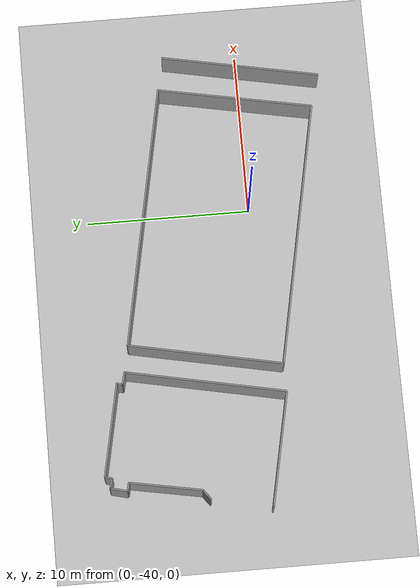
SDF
<sdf version="1.6">
 <world name="default">
  <model name="ground_plane">
   <static>1</static>
   <link name="link">
    <collision name="collision">
     <geometry><plane><normal>0 0 1</normal><size>100 100</size></plane></geometry>
     <surface><friction><ode><mu>100</mu><mu2>50</mu2></ode></friction></surface>
    </collision>
    <visual name="visual">
     <cast_shadows>0</cast_shadows>
     <geometry><plane><normal>0 0 1</normal><size>100 100</size></plane></geometry>
     <material>
      <script><uri>file://media/materials/scripts/gazebo.material</uri><name>Gazebo/Grey</name></script>
     </material>
    </visual>
   </link>
  </model>
  <model name="50023964">
   <static>1</static>
   <link name="Wall_143">
    <collision name="Wall_143_Collision">
     <geometry><box><size>9.76209954019 0.1 2.5</size></box></geometry>
     <pose>4.88104977009 0 1.25 0 0 0</pose>
    </collision>
    <visual name="Wall_143_Visual">
     <pose>4.88104977009 0 1.25 0 0 0</pose>
     <geometry><box><size>9.76209954019 0.1 2.5</size></box></geometry>
     <material>
      <script><uri>file://media/materials/scripts/gazebo.material</uri><name>Gazebo/Grey</name></script>
      <ambient>1 1 1 1</ambient>
     </material>
    </visual>
    <pose>90.0163221238 -119.499031469 0 0 0 1.37727948588</pose>
   </link>
   <link name="Wall_148">
    <collision name="Wall_148_Collision">
     <geometry><box><size>9.46305015491 0.1 2.5</size></box></geometry>
     <pose>4.73152507745 0 1.25 0 0 0</pose>
    </collision>
    <visual name="Wall_148_Visual">
     <pose>4.73152507745 0 1.25 0 0 0</pose>
     <geometry><box><size>9.46305015491 0.1 2.5</size></box></geometry>
     <material>
      <script><uri>file://media/materials/scripts/gazebo.material</uri><name>Gazebo/Grey</name></script>
      <ambient>1 1 1 1</ambient>
     </material>
    </visual>
    <pose>72.0276904512 -115.698580547 0 0 0 1.37261630473</pose>
   </link>
   <link name="Wall_149">
    <collision name="Wall_149_Collision">
     <geometry><box><size>16.2220365014 0.1 2.5</size></box></geometry>
     <pose>8.1110182507 0 1.25 0 0 0</pose>
    </collision>
    <visual name="Wall_149_Visual">
     <pose>8.1110182507 0 1.25 0 0 0</pose>
     <geometry><box><size>16.2220365014 0.1 2.5</size></box></geometry>
     <material>
      <script><uri>file://media/materials/scripts/gazebo.material</uri><name>Gazebo/Grey</name></script>
      <ambient>1 1 1 1</ambient>
     </material>
    </visual>
    <pose>73.8908259503 -106.420755136 0 0 0 -0.191805903141</pose>
   </link>
   <link name="Wall_150">
    <collision name="Wall_150_Collision">
     <geometry><box><size>9.54280666722 0.1 2.5</size></box></geometry>
     <pose>4.77140333361 0 1.25 0 0 0</pose>
    </collision>
    <visual name="Wall_150_Visual">
     <pose>4.77140333361 0 1.25 0 0 0</pose>
     <geometry><box><size>9.54280666722 0.1 2.5</size></box></geometry>
     <material>
      <script><uri>file://media/materials/scripts/gazebo.material</uri><name>Gazebo/Grey</name></script>
      <ambient>1 1 1 1</ambient>
     </material>
    </visual>
    <pose>89.8153758217 -109.513194246 0 0 0 -1.75910749273</pose>
   </link>
   <link name="Wall_151">
    <collision name="Wall_151_Collision">
     <geometry><box><size>16.3158998259 0.1 2.5</size></box></geometry>
     <pose>8.15794991294 0 1.25 0 0 0</pose>
    </collision>
    <visual name="Wall_151_Visual">
     <pose>8.15794991294 0 1.25 0 0 0</pose>
     <geometry><box><size>16.3158998259 0.1 2.5</size></box></geometry>
     <material>
      <script><uri>file://media/materials/scripts/gazebo.material</uri><name>Gazebo/Grey</name></script>
      <ambient>1 1 1 1</ambient>
     </material>
    </visual>
    <pose>88.0289606554 -118.887301134 0 0 0 2.94489025091</pose>
   </link>
   <link name="Wall_153">
    <collision name="Wall_153_Collision">
     <geometry><box><size>0.742421209534 0.1 2.5</size></box></geometry>
     <pose>0.371210604767 0 1.25 0 0 0</pose>
    </collision>
    <visual name="Wall_153_Visual">
     <pose>0.371210604767 0 1.25 0 0 0</pose>
     <geometry><box><size>0.742421209534 0.1 2.5</size></box></geometry>
     <material>
      <script><uri>file://media/materials/scripts/gazebo.material</uri><name>Gazebo/Grey</name></script>
      <ambient>1 1 1 1</ambient>
     </material>
    </visual>
    <pose>64.1778285859 -110.651551237 0 0 0 0.63775247242</pose>
   </link>
   <link name="Wall_154">
    <collision name="Wall_154_Collision">
     <geometry><box><size>4.4237679642 0.1 2.5</size></box></geometry>
     <pose>2.2118839821 0 1.25 0 0 0</pose>
    </collision>
    <visual name="Wall_154_Visual">
     <pose>2.2118839821 0 1.25 0 0 0</pose>
     <geometry><box><size>4.4237679642 0.1 2.5</size></box></geometry>
     <material>
      <script><uri>file://media/materials/scripts/gazebo.material</uri><name>Gazebo/Grey</name></script>
      <ambient>1 1 1 1</ambient>
     </material>
    </visual>
    <pose>64.7743164714 -110.20952018 0 0 0 1.39006964422</pose>
   </link>
   <link name="Wall_155">
    <collision name="Wall_155_Collision">
     <geometry><box><size>0.498386039366 0.1 2.5</size></box></geometry>
     <pose>0.249193019683 0 1.25 0 0 0</pose>
    </collision>
    <visual name="Wall_155_Visual">
     <pose>0.249193019683 0 1.25 0 0 0</pose>
     <geometry><box><size>0.498386039366 0.1 2.5</size></box></geometry>
     <material>
      <script><uri>file://media/materials/scripts/gazebo.material</uri><name>Gazebo/Grey</name></script>
      <ambient>1 1 1 1</ambient>
     </material>
    </visual>
    <pose>65.5694642914 -105.857800641 0 0 0 2.91800308618</pose>
   </link>
   <link name="Wall_156">
    <collision name="Wall_156_Collision">
     <geometry><box><size>1.0448415504 0.1 2.5</size></box></geometry>
     <pose>0.522420775202 0 1.25 0 0 0</pose>
    </collision>
    <visual name="Wall_156_Visual">
     <pose>0.522420775202 0 1.25 0 0 0</pose>
     <geometry><box><size>1.0448415504 0.1 2.5</size></box></geometry>
     <material>
      <script><uri>file://media/materials/scripts/gazebo.material</uri><name>Gazebo/Grey</name></script>
      <ambient>1 1 1 1</ambient>
     </material>
    </visual>
    <pose>65.0834841701 -105.747292877 0 0 0 1.33596061947</pose>
   </link>
   <link name="Wall_157">
    <collision name="Wall_157_Collision">
     <geometry><box><size>0.594857220101 0.1 2.5</size></box></geometry>
     <pose>0.297428610051 0 1.25 0 0 0</pose>
    </collision>
    <visual name="Wall_157_Visual">
     <pose>0.297428610051 0 1.25 0 0 0</pose>
     <geometry><box><size>0.594857220101 0.1 2.5</size></box></geometry>
     <material>
      <script><uri>file://media/materials/scripts/gazebo.material</uri><name>Gazebo/Grey</name></script>
      <ambient>1 1 1 1</ambient>
     </material>
    </visual>
    <pose>65.3266012512 -104.731129529 0 0 0 -0.263105756439</pose>
   </link>
   <link name="Wall_158">
    <collision name="Wall_158_Collision">
     <geometry><box><size>0.440051602902 0.1 2.5</size></box></geometry>
     <pose>0.220025801451 0 1.25 0 0 0</pose>
    </collision>
    <visual name="Wall_158_Visual">
     <pose>0.220025801451 0 1.25 0 0 0</pose>
     <geometry><box><size>0.440051602902 0.1 2.5</size></box></geometry>
     <material>
      <script><uri>file://media/materials/scripts/gazebo.material</uri><name>Gazebo/Grey</name></script>
      <ambient>1 1 1 1</ambient>
     </material>
    </visual>
    <pose>65.9009875838 -104.885840399 0 0 0 1.26529411412</pose>
   </link>
   <link name="Wall_159">
    <collision name="Wall_159_Collision">
     <geometry><box><size>5.70133083528 0.1 2.5</size></box></geometry>
     <pose>2.85066541764 0 1.25 0 0 0</pose>
    </collision>
    <visual name="Wall_159_Visual">
     <pose>2.85066541764 0 1.25 0 0 0</pose>
     <geometry><box><size>5.70133083528 0.1 2.5</size></box></geometry>
     <material>
      <script><uri>file://media/materials/scripts/gazebo.material</uri><name>Gazebo/Grey</name></script>
      <ambient>1 1 1 1</ambient>
     </material>
    </visual>
    <pose>66.0333428599 -104.466164936 0 0 0 -0.198924811072</pose>
   </link>
   <link name="Wall_160">
    <collision name="Wall_160_Collision">
     <geometry><box><size>0.342797494401 0.1 2.5</size></box></geometry>
     <pose>0.171398747201 0 1.25 0 0 0</pose>
    </collision>
    <visual name="Wall_160_Visual">
     <pose>0.171398747201 0 1.25 0 0 0</pose>
     <geometry><box><size>0.342797494401 0.1 2.5</size></box></geometry>
     <material>
      <script><uri>file://media/materials/scripts/gazebo.material</uri><name>Gazebo/Grey</name></script>
      <ambient>1 1 1 1</ambient>
     </material>
    </visual>
    <pose>71.6222412753 -105.592836048 0 0 0 -1.83087360879</pose>
   </link>
   <link name="Wall_161">
    <collision name="Wall_161_Collision">
     <geometry><box><size>0.749983324418 0.1 2.5</size></box></geometry>
     <pose>0.374991662209 0 1.25 0 0 0</pose>
    </collision>
    <visual name="Wall_161_Visual">
     <pose>0.374991662209 0 1.25 0 0 0</pose>
     <geometry><box><size>0.749983324418 0.1 2.5</size></box></geometry>
     <material>
      <script><uri>file://media/materials/scripts/gazebo.material</uri><name>Gazebo/Grey</name></script>
      <ambient>1 1 1 1</ambient>
     </material>
    </visual>
    <pose>71.5340891048 -105.9241053 0 0 0 -0.237995536414</pose>
   </link>
   <link name="Wall_162">
    <collision name="Wall_162_Collision">
     <geometry><box><size>9.82566338114 0.1 2.5</size></box></geometry>
     <pose>4.91283169057 0 1.25 0 0 0</pose>
    </collision>
    <visual name="Wall_162_Visual">
     <pose>4.91283169057 0 1.25 0 0 0</pose>
     <geometry><box><size>9.82566338114 0.1 2.5</size></box></geometry>
     <material>
      <script><uri>file://media/materials/scripts/gazebo.material</uri><name>Gazebo/Grey</name></script>
      <ambient>1 1 1 1</ambient>
     </material>
    </visual>
    <pose>72.2629322664 -106.100917723 0 0 0 -1.76995136804</pose>
   </link>
   <link name="Wall_163">
    <collision name="Wall_163_Collision">
     <geometry><box><size>7.01428001546 0.1 2.5</size></box></geometry>
     <pose>3.50714000773 0 1.25 0 0 0</pose>
    </collision>
    <visual name="Wall_163_Visual">
     <pose>3.50714000773 0 1.25 0 0 0</pose>
     <geometry><box><size>7.01428001546 0.1 2.5</size></box></geometry>
     <material>
      <script><uri>file://media/materials/scripts/gazebo.material</uri><name>Gazebo/Grey</name></script>
      <ambient>1 1 1 1</ambient>
     </material>
    </visual>
    <pose>70.3190117811 -115.732367978 0 0 0 2.93861421026</pose>
   </link>
   <pose>-82.25 74.5341192722 0 0 0 0</pose>
  </model>
 </world>
</sdf>
